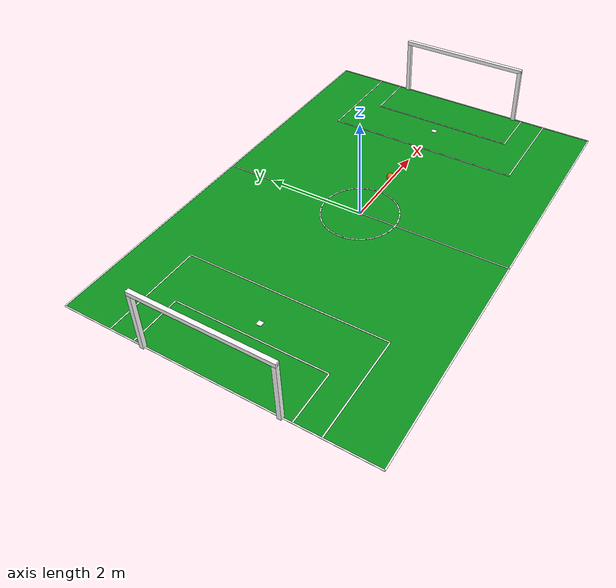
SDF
<?xml version="1.0"?>
<sdf version="1.6">
  <world name="soccer_field">
    <physics name="default_physics" type="ode">
      <max_step_size>0.001</max_step_size>
      <real_time_update_rate>1000</real_time_update_rate>
      <real_time_factor>1.0</real_time_factor>
    </physics>

    <scene>
      <ambient>0.45 0.45 0.45 1</ambient>
      <background>0.70 0.80 0.95 1</background>
      <shadows>true</shadows>
    </scene>

    <include>
      <uri>model://sun</uri>
    </include>

    <model name="safety_ground">
      <static>true</static>
      <link name="ground_link">
        <collision name="ground_collision">
          <geometry>
            <plane>
              <normal>0 0 1</normal>
              <size>100 100</size>
            </plane>
          </geometry>
          <surface>
            <friction>
              <ode>
                <mu>6.0</mu>
                <mu2>6.0</mu2>
              </ode>
            </friction>
          </surface>
        </collision>
      </link>
    </model>

    <model name="soccer_field">
      <static>true</static>
      <link name="field_link">
        <collision name="field_collision">
          <geometry>
            <box>
              <size>9.0 6.0 0.02</size>
            </box>
          </geometry>
          <surface>
            <friction>
              <ode>
                <mu>6.0</mu>
                <mu2>6.0</mu2>
              </ode>
            </friction>
          </surface>
        </collision>
        <visual name="field_visual">
          <geometry>
            <box>
              <size>9.0 6.0 0.02</size>
            </box>
          </geometry>
          <material>
            <ambient>0.05 0.45 0.10 1</ambient>
            <diffuse>0.05 0.60 0.12 1</diffuse>
          </material>
        </visual>
      </link>
    </model>

    <model name="field_lines">
      <static>true</static>
      <link name="lines">
        <visual name="center_line"><pose>0.000 0.000 0.014 0 0 0</pose><geometry><box><size>0.025 6.000 0.004</size></box></geometry><material><ambient>1 1 1 1</ambient><diffuse>1 1 1 1</diffuse></material></visual>
        <visual name="left_sideline"><pose>0.000 3.000 0.014 0 0 0</pose><geometry><box><size>9.000 0.025 0.004</size></box></geometry><material><ambient>1 1 1 1</ambient><diffuse>1 1 1 1</diffuse></material></visual>
        <visual name="right_sideline"><pose>0.000 -3.000 0.014 0 0 0</pose><geometry><box><size>9.000 0.025 0.004</size></box></geometry><material><ambient>1 1 1 1</ambient><diffuse>1 1 1 1</diffuse></material></visual>
        <visual name="near_goal_line"><pose>-4.500 0.000 0.014 0 0 0</pose><geometry><box><size>0.025 6.000 0.004</size></box></geometry><material><ambient>1 1 1 1</ambient><diffuse>1 1 1 1</diffuse></material></visual>
        <visual name="far_goal_line"><pose>4.500 0.000 0.014 0 0 0</pose><geometry><box><size>0.025 6.000 0.004</size></box></geometry><material><ambient>1 1 1 1</ambient><diffuse>1 1 1 1</diffuse></material></visual>
        <visual name="center_circle_00"><pose>0.750 0.000 0.015 0 0 1.5708</pose><geometry><box><size>0.135 0.025 0.004</size></box></geometry><material><ambient>1 1 1 1</ambient><diffuse>1 1 1 1</diffuse></material></visual>
        <visual name="center_circle_01"><pose>0.736 0.146 0.015 0 0 1.7671</pose><geometry><box><size>0.135 0.025 0.004</size></box></geometry><material><ambient>1 1 1 1</ambient><diffuse>1 1 1 1</diffuse></material></visual>
        <visual name="center_circle_02"><pose>0.693 0.287 0.015 0 0 1.9635</pose><geometry><box><size>0.135 0.025 0.004</size></box></geometry><material><ambient>1 1 1 1</ambient><diffuse>1 1 1 1</diffuse></material></visual>
        <visual name="center_circle_03"><pose>0.624 0.417 0.015 0 0 2.1598</pose><geometry><box><size>0.135 0.025 0.004</size></box></geometry><material><ambient>1 1 1 1</ambient><diffuse>1 1 1 1</diffuse></material></visual>
        <visual name="center_circle_04"><pose>0.530 0.530 0.015 0 0 2.3562</pose><geometry><box><size>0.135 0.025 0.004</size></box></geometry><material><ambient>1 1 1 1</ambient><diffuse>1 1 1 1</diffuse></material></visual>
        <visual name="center_circle_05"><pose>0.417 0.624 0.015 0 0 2.5525</pose><geometry><box><size>0.135 0.025 0.004</size></box></geometry><material><ambient>1 1 1 1</ambient><diffuse>1 1 1 1</diffuse></material></visual>
        <visual name="center_circle_06"><pose>0.287 0.693 0.015 0 0 2.7489</pose><geometry><box><size>0.135 0.025 0.004</size></box></geometry><material><ambient>1 1 1 1</ambient><diffuse>1 1 1 1</diffuse></material></visual>
        <visual name="center_circle_07"><pose>0.146 0.736 0.015 0 0 2.9452</pose><geometry><box><size>0.135 0.025 0.004</size></box></geometry><material><ambient>1 1 1 1</ambient><diffuse>1 1 1 1</diffuse></material></visual>
        <visual name="center_circle_08"><pose>0.000 0.750 0.015 0 0 3.1416</pose><geometry><box><size>0.135 0.025 0.004</size></box></geometry><material><ambient>1 1 1 1</ambient><diffuse>1 1 1 1</diffuse></material></visual>
        <visual name="center_circle_09"><pose>-0.146 0.736 0.015 0 0 3.3379</pose><geometry><box><size>0.135 0.025 0.004</size></box></geometry><material><ambient>1 1 1 1</ambient><diffuse>1 1 1 1</diffuse></material></visual>
        <visual name="center_circle_10"><pose>-0.287 0.693 0.015 0 0 3.5343</pose><geometry><box><size>0.135 0.025 0.004</size></box></geometry><material><ambient>1 1 1 1</ambient><diffuse>1 1 1 1</diffuse></material></visual>
        <visual name="center_circle_11"><pose>-0.417 0.624 0.015 0 0 3.7306</pose><geometry><box><size>0.135 0.025 0.004</size></box></geometry><material><ambient>1 1 1 1</ambient><diffuse>1 1 1 1</diffuse></material></visual>
        <visual name="center_circle_12"><pose>-0.530 0.530 0.015 0 0 3.9270</pose><geometry><box><size>0.135 0.025 0.004</size></box></geometry><material><ambient>1 1 1 1</ambient><diffuse>1 1 1 1</diffuse></material></visual>
        <visual name="center_circle_13"><pose>-0.624 0.417 0.015 0 0 4.1233</pose><geometry><box><size>0.135 0.025 0.004</size></box></geometry><material><ambient>1 1 1 1</ambient><diffuse>1 1 1 1</diffuse></material></visual>
        <visual name="center_circle_14"><pose>-0.693 0.287 0.015 0 0 4.3197</pose><geometry><box><size>0.135 0.025 0.004</size></box></geometry><material><ambient>1 1 1 1</ambient><diffuse>1 1 1 1</diffuse></material></visual>
        <visual name="center_circle_15"><pose>-0.736 0.146 0.015 0 0 4.5160</pose><geometry><box><size>0.135 0.025 0.004</size></box></geometry><material><ambient>1 1 1 1</ambient><diffuse>1 1 1 1</diffuse></material></visual>
        <visual name="center_circle_16"><pose>-0.750 0.000 0.015 0 0 4.7124</pose><geometry><box><size>0.135 0.025 0.004</size></box></geometry><material><ambient>1 1 1 1</ambient><diffuse>1 1 1 1</diffuse></material></visual>
        <visual name="center_circle_17"><pose>-0.736 -0.146 0.015 0 0 4.9087</pose><geometry><box><size>0.135 0.025 0.004</size></box></geometry><material><ambient>1 1 1 1</ambient><diffuse>1 1 1 1</diffuse></material></visual>
        <visual name="center_circle_18"><pose>-0.693 -0.287 0.015 0 0 5.1051</pose><geometry><box><size>0.135 0.025 0.004</size></box></geometry><material><ambient>1 1 1 1</ambient><diffuse>1 1 1 1</diffuse></material></visual>
        <visual name="center_circle_19"><pose>-0.624 -0.417 0.015 0 0 5.3014</pose><geometry><box><size>0.135 0.025 0.004</size></box></geometry><material><ambient>1 1 1 1</ambient><diffuse>1 1 1 1</diffuse></material></visual>
        <visual name="center_circle_20"><pose>-0.530 -0.530 0.015 0 0 5.4978</pose><geometry><box><size>0.135 0.025 0.004</size></box></geometry><material><ambient>1 1 1 1</ambient><diffuse>1 1 1 1</diffuse></material></visual>
        <visual name="center_circle_21"><pose>-0.417 -0.624 0.015 0 0 5.6941</pose><geometry><box><size>0.135 0.025 0.004</size></box></geometry><material><ambient>1 1 1 1</ambient><diffuse>1 1 1 1</diffuse></material></visual>
        <visual name="center_circle_22"><pose>-0.287 -0.693 0.015 0 0 5.8905</pose><geometry><box><size>0.135 0.025 0.004</size></box></geometry><material><ambient>1 1 1 1</ambient><diffuse>1 1 1 1</diffuse></material></visual>
        <visual name="center_circle_23"><pose>-0.146 -0.736 0.015 0 0 6.0868</pose><geometry><box><size>0.135 0.025 0.004</size></box></geometry><material><ambient>1 1 1 1</ambient><diffuse>1 1 1 1</diffuse></material></visual>
        <visual name="center_circle_24"><pose>-0.000 -0.750 0.015 0 0 6.2832</pose><geometry><box><size>0.135 0.025 0.004</size></box></geometry><material><ambient>1 1 1 1</ambient><diffuse>1 1 1 1</diffuse></material></visual>
        <visual name="center_circle_25"><pose>0.146 -0.736 0.015 0 0 6.4795</pose><geometry><box><size>0.135 0.025 0.004</size></box></geometry><material><ambient>1 1 1 1</ambient><diffuse>1 1 1 1</diffuse></material></visual>
        <visual name="center_circle_26"><pose>0.287 -0.693 0.015 0 0 6.6759</pose><geometry><box><size>0.135 0.025 0.004</size></box></geometry><material><ambient>1 1 1 1</ambient><diffuse>1 1 1 1</diffuse></material></visual>
        <visual name="center_circle_27"><pose>0.417 -0.624 0.015 0 0 6.8722</pose><geometry><box><size>0.135 0.025 0.004</size></box></geometry><material><ambient>1 1 1 1</ambient><diffuse>1 1 1 1</diffuse></material></visual>
        <visual name="center_circle_28"><pose>0.530 -0.530 0.015 0 0 7.0686</pose><geometry><box><size>0.135 0.025 0.004</size></box></geometry><material><ambient>1 1 1 1</ambient><diffuse>1 1 1 1</diffuse></material></visual>
        <visual name="center_circle_29"><pose>0.624 -0.417 0.015 0 0 7.2649</pose><geometry><box><size>0.135 0.025 0.004</size></box></geometry><material><ambient>1 1 1 1</ambient><diffuse>1 1 1 1</diffuse></material></visual>
        <visual name="center_circle_30"><pose>0.693 -0.287 0.015 0 0 7.4613</pose><geometry><box><size>0.135 0.025 0.004</size></box></geometry><material><ambient>1 1 1 1</ambient><diffuse>1 1 1 1</diffuse></material></visual>
        <visual name="center_circle_31"><pose>0.736 -0.146 0.015 0 0 7.6576</pose><geometry><box><size>0.135 0.025 0.004</size></box></geometry><material><ambient>1 1 1 1</ambient><diffuse>1 1 1 1</diffuse></material></visual>
        <visual name="center_mark"><pose>0.000 0.000 0.014 0 0 0</pose><geometry><box><size>0.100 0.100 0.004</size></box></geometry><material><ambient>1 1 1 1</ambient><diffuse>1 1 1 1</diffuse></material></visual>
        <visual name="far_goal_area_inner"><pose>3.500 0.000 0.014 0 0 0</pose><geometry><box><size>0.025 3.000 0.004</size></box></geometry><material><ambient>1 1 1 1</ambient><diffuse>1 1 1 1</diffuse></material></visual>
        <visual name="far_goal_area_top"><pose>4.000 1.500 0.014 0 0 0</pose><geometry><box><size>1.000 0.025 0.004</size></box></geometry><material><ambient>1 1 1 1</ambient><diffuse>1 1 1 1</diffuse></material></visual>
        <visual name="far_goal_area_bottom"><pose>4.000 -1.500 0.014 0 0 0</pose><geometry><box><size>1.000 0.025 0.004</size></box></geometry><material><ambient>1 1 1 1</ambient><diffuse>1 1 1 1</diffuse></material></visual>
        <visual name="far_penalty_area_inner"><pose>2.500 0.000 0.014 0 0 0</pose><geometry><box><size>0.025 4.000 0.004</size></box></geometry><material><ambient>1 1 1 1</ambient><diffuse>1 1 1 1</diffuse></material></visual>
        <visual name="far_penalty_area_top"><pose>3.500 2.000 0.014 0 0 0</pose><geometry><box><size>2.000 0.025 0.004</size></box></geometry><material><ambient>1 1 1 1</ambient><diffuse>1 1 1 1</diffuse></material></visual>
        <visual name="far_penalty_area_bottom"><pose>3.500 -2.000 0.014 0 0 0</pose><geometry><box><size>2.000 0.025 0.004</size></box></geometry><material><ambient>1 1 1 1</ambient><diffuse>1 1 1 1</diffuse></material></visual>
        <visual name="far_penalty_mark"><pose>3.200 0.000 0.014 0 0 0</pose><geometry><box><size>0.100 0.100 0.004</size></box></geometry><material><ambient>1 1 1 1</ambient><diffuse>1 1 1 1</diffuse></material></visual>
        <visual name="near_goal_area_inner"><pose>-3.500 0.000 0.014 0 0 0</pose><geometry><box><size>0.025 3.000 0.004</size></box></geometry><material><ambient>1 1 1 1</ambient><diffuse>1 1 1 1</diffuse></material></visual>
        <visual name="near_goal_area_top"><pose>-4.000 1.500 0.014 0 0 0</pose><geometry><box><size>1.000 0.025 0.004</size></box></geometry><material><ambient>1 1 1 1</ambient><diffuse>1 1 1 1</diffuse></material></visual>
        <visual name="near_goal_area_bottom"><pose>-4.000 -1.500 0.014 0 0 0</pose><geometry><box><size>1.000 0.025 0.004</size></box></geometry><material><ambient>1 1 1 1</ambient><diffuse>1 1 1 1</diffuse></material></visual>
        <visual name="near_penalty_area_inner"><pose>-2.500 0.000 0.014 0 0 0</pose><geometry><box><size>0.025 4.000 0.004</size></box></geometry><material><ambient>1 1 1 1</ambient><diffuse>1 1 1 1</diffuse></material></visual>
        <visual name="near_penalty_area_top"><pose>-3.500 2.000 0.014 0 0 0</pose><geometry><box><size>2.000 0.025 0.004</size></box></geometry><material><ambient>1 1 1 1</ambient><diffuse>1 1 1 1</diffuse></material></visual>
        <visual name="near_penalty_area_bottom"><pose>-3.500 -2.000 0.014 0 0 0</pose><geometry><box><size>2.000 0.025 0.004</size></box></geometry><material><ambient>1 1 1 1</ambient><diffuse>1 1 1 1</diffuse></material></visual>
        <visual name="near_penalty_mark"><pose>-3.200 0.000 0.014 0 0 0</pose><geometry><box><size>0.100 0.100 0.004</size></box></geometry><material><ambient>1 1 1 1</ambient><diffuse>1 1 1 1</diffuse></material></visual>
      </link>
    </model>

    <model name="goal">
      <static>true</static>
      <pose>4.5 0 0 0 0 0</pose>
      <link name="goal_frame">
        <collision name="left_post_collision"><pose>0 1.3 0.6 0 0 0</pose><geometry><box><size>0.08 0.08 1.20</size></box></geometry></collision>
        <collision name="right_post_collision"><pose>0 -1.3 0.6 0 0 0</pose><geometry><box><size>0.08 0.08 1.20</size></box></geometry></collision>
        <collision name="crossbar_collision"><pose>0 0 1.20 0 0 0</pose><geometry><box><size>0.08 2.68 0.08</size></box></geometry></collision>
        <visual name="left_post_visual"><pose>0 1.3 0.6 0 0 0</pose><geometry><box><size>0.08 0.08 1.20</size></box></geometry><material><ambient>1 1 1 1</ambient><diffuse>1 1 1 1</diffuse></material></visual>
        <visual name="right_post_visual"><pose>0 -1.3 0.6 0 0 0</pose><geometry><box><size>0.08 0.08 1.20</size></box></geometry><material><ambient>1 1 1 1</ambient><diffuse>1 1 1 1</diffuse></material></visual>
        <visual name="crossbar_visual"><pose>0 0 1.20 0 0 0</pose><geometry><box><size>0.08 2.68 0.08</size></box></geometry><material><ambient>1 1 1 1</ambient><diffuse>1 1 1 1</diffuse></material></visual>
      </link>
    </model>

    <model name="goal_left">
      <static>true</static>
      <pose>-4.5 0 0 0 0 0</pose>
      <link name="goal_frame">
        <collision name="left_post_collision"><pose>0 1.3 0.6 0 0 0</pose><geometry><box><size>0.08 0.08 1.20</size></box></geometry></collision>
        <collision name="right_post_collision"><pose>0 -1.3 0.6 0 0 0</pose><geometry><box><size>0.08 0.08 1.20</size></box></geometry></collision>
        <collision name="crossbar_collision"><pose>0 0 1.20 0 0 0</pose><geometry><box><size>0.08 2.68 0.08</size></box></geometry></collision>
        <visual name="left_post_visual"><pose>0 1.3 0.6 0 0 0</pose><geometry><box><size>0.08 0.08 1.20</size></box></geometry><material><ambient>1 1 1 1</ambient><diffuse>1 1 1 1</diffuse></material></visual>
        <visual name="right_post_visual"><pose>0 -1.3 0.6 0 0 0</pose><geometry><box><size>0.08 0.08 1.20</size></box></geometry><material><ambient>1 1 1 1</ambient><diffuse>1 1 1 1</diffuse></material></visual>
        <visual name="crossbar_visual"><pose>0 0 1.20 0 0 0</pose><geometry><box><size>0.08 2.68 0.08</size></box></geometry><material><ambient>1 1 1 1</ambient><diffuse>1 1 1 1</diffuse></material></visual>
      </link>
    </model>

    <model name="soccer_ball">
      <static>false</static>
      <pose>1.2 0 0.085 0 0 0</pose>
      <link name="ball">
        <inertial>
          <mass>0.08</mass>
          <inertia><ixx>0.00018</ixx><iyy>0.00018</iyy><izz>0.00018</izz><ixy>0</ixy><ixz>0</ixz><iyz>0</iyz></inertia>
        </inertial>
        <collision name="ball_collision">
          <geometry><sphere><radius>0.075</radius></sphere></geometry>
          <surface>
            <friction><ode><mu>9.0</mu><mu2>9.0</mu2></ode></friction>
            <bounce><restitution_coefficient>0.02</restitution_coefficient><threshold>0.05</threshold></bounce>
          </surface>
        </collision>
        <visual name="ball_visual">
          <geometry><sphere><radius>0.075</radius></sphere></geometry>
          <material><ambient>1.0 0.45 0.05 1</ambient><diffuse>1.0 0.45 0.05 1</diffuse></material>
        </visual>
      </link>
    </model>

    <gui fullscreen="0">
      <camera name="user_camera">
        <pose>-3.0 -4.2 3.0 0 0.55 0.72</pose>
        <view_controller>orbit</view_controller>
      </camera>
    </gui>
  </world>
</sdf>
